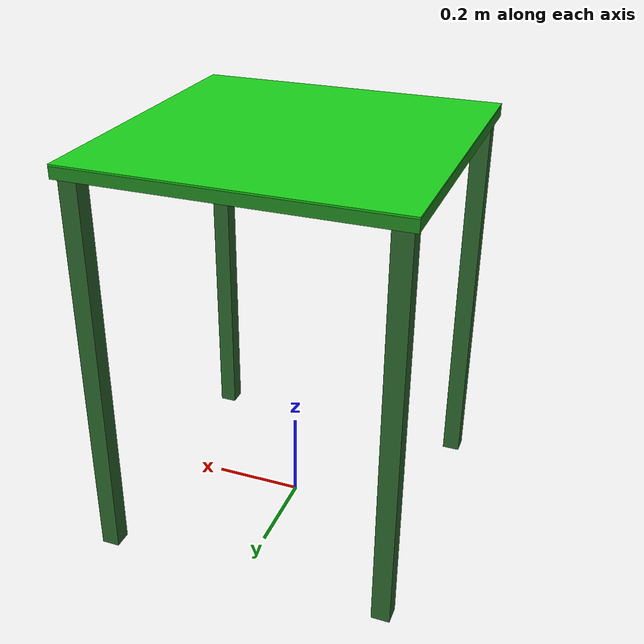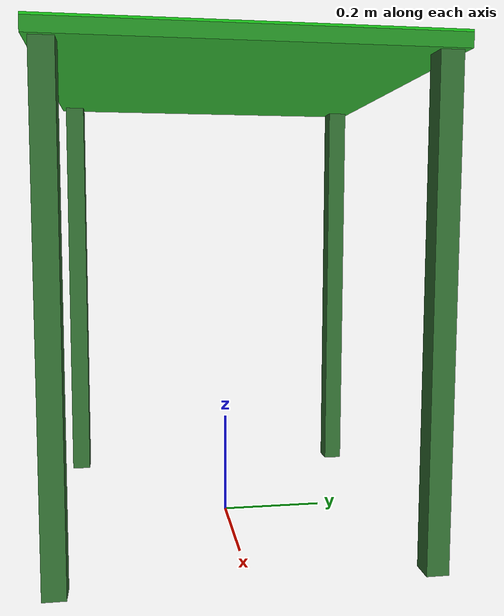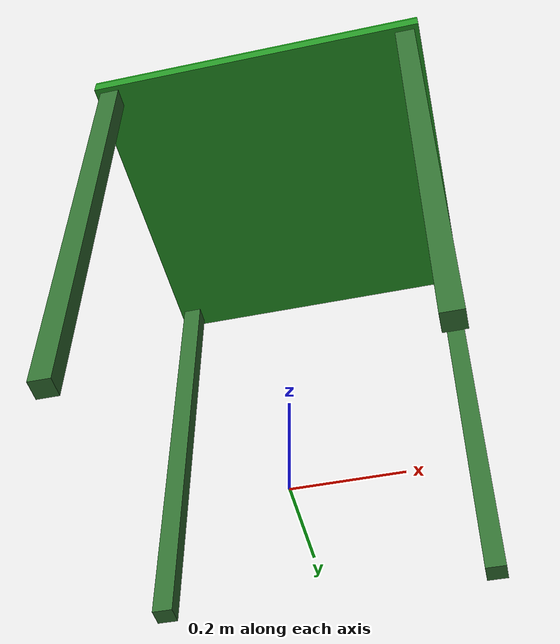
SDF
<?xml version="1.0" ?>
<sdf version="1.10">
  <model name="finished_area">
    <static>true</static>

    <!-- Platform top slab: 0.7 x 0.7 x 0.025m, top at z=0.900 -->
    <link name="top">
      <pose>0 0 0.8875 0 0 0</pose>
      <collision name="col">
        <geometry><box><size>0.7 0.7 0.025</size></box></geometry>
      </collision>
      <visual name="vis">
        <geometry><box><size>0.7 0.7 0.025</size></box></geometry>
        <material>
          <ambient>0.10 0.40 0.10 1</ambient>
          <diffuse>0.15 0.60 0.15 1</diffuse>
          <specular>0.05 0.10 0.05 1</specular>
        </material>
      </visual>
    </link>

    <!-- 4 corner legs: 0.04x0.04x0.875m, center at z=0.4375 -->
    <link name="leg_fl">
      <pose>-0.32 -0.32 0.4375 0 0 0</pose>
      <collision name="col"><geometry><box><size>0.04 0.04 0.875</size></box></geometry></collision>
      <visual name="vis">
        <geometry><box><size>0.04 0.04 0.875</size></box></geometry>
        <material><ambient>0.15 0.30 0.15 1</ambient><diffuse>0.20 0.45 0.20 1</diffuse></material>
      </visual>
    </link>
    <link name="leg_fr">
      <pose>-0.32  0.32 0.4375 0 0 0</pose>
      <collision name="col"><geometry><box><size>0.04 0.04 0.875</size></box></geometry></collision>
      <visual name="vis">
        <geometry><box><size>0.04 0.04 0.875</size></box></geometry>
        <material><ambient>0.15 0.30 0.15 1</ambient><diffuse>0.20 0.45 0.20 1</diffuse></material>
      </visual>
    </link>
    <link name="leg_bl">
      <pose> 0.32 -0.32 0.4375 0 0 0</pose>
      <collision name="col"><geometry><box><size>0.04 0.04 0.875</size></box></geometry></collision>
      <visual name="vis">
        <geometry><box><size>0.04 0.04 0.875</size></box></geometry>
        <material><ambient>0.15 0.30 0.15 1</ambient><diffuse>0.20 0.45 0.20 1</diffuse></material>
      </visual>
    </link>
    <link name="leg_br">
      <pose> 0.32  0.32 0.4375 0 0 0</pose>
      <collision name="col"><geometry><box><size>0.04 0.04 0.875</size></box></geometry></collision>
      <visual name="vis">
        <geometry><box><size>0.04 0.04 0.875</size></box></geometry>
        <material><ambient>0.15 0.30 0.15 1</ambient><diffuse>0.20 0.45 0.20 1</diffuse></material>
      </visual>
    </link>

    <!-- Label ring on top surface to highlight finished-area -->
    <link name="border">
      <pose>0 0 0.902 0 0 0</pose>
      <visual name="vis">
        <geometry><box><size>0.7 0.7 0.004</size></box></geometry>
        <material>
          <ambient>0.05 0.55 0.05 1</ambient>
          <diffuse>0.10 0.80 0.10 1</diffuse>
        </material>
      </visual>
    </link>

  </model>
</sdf>
